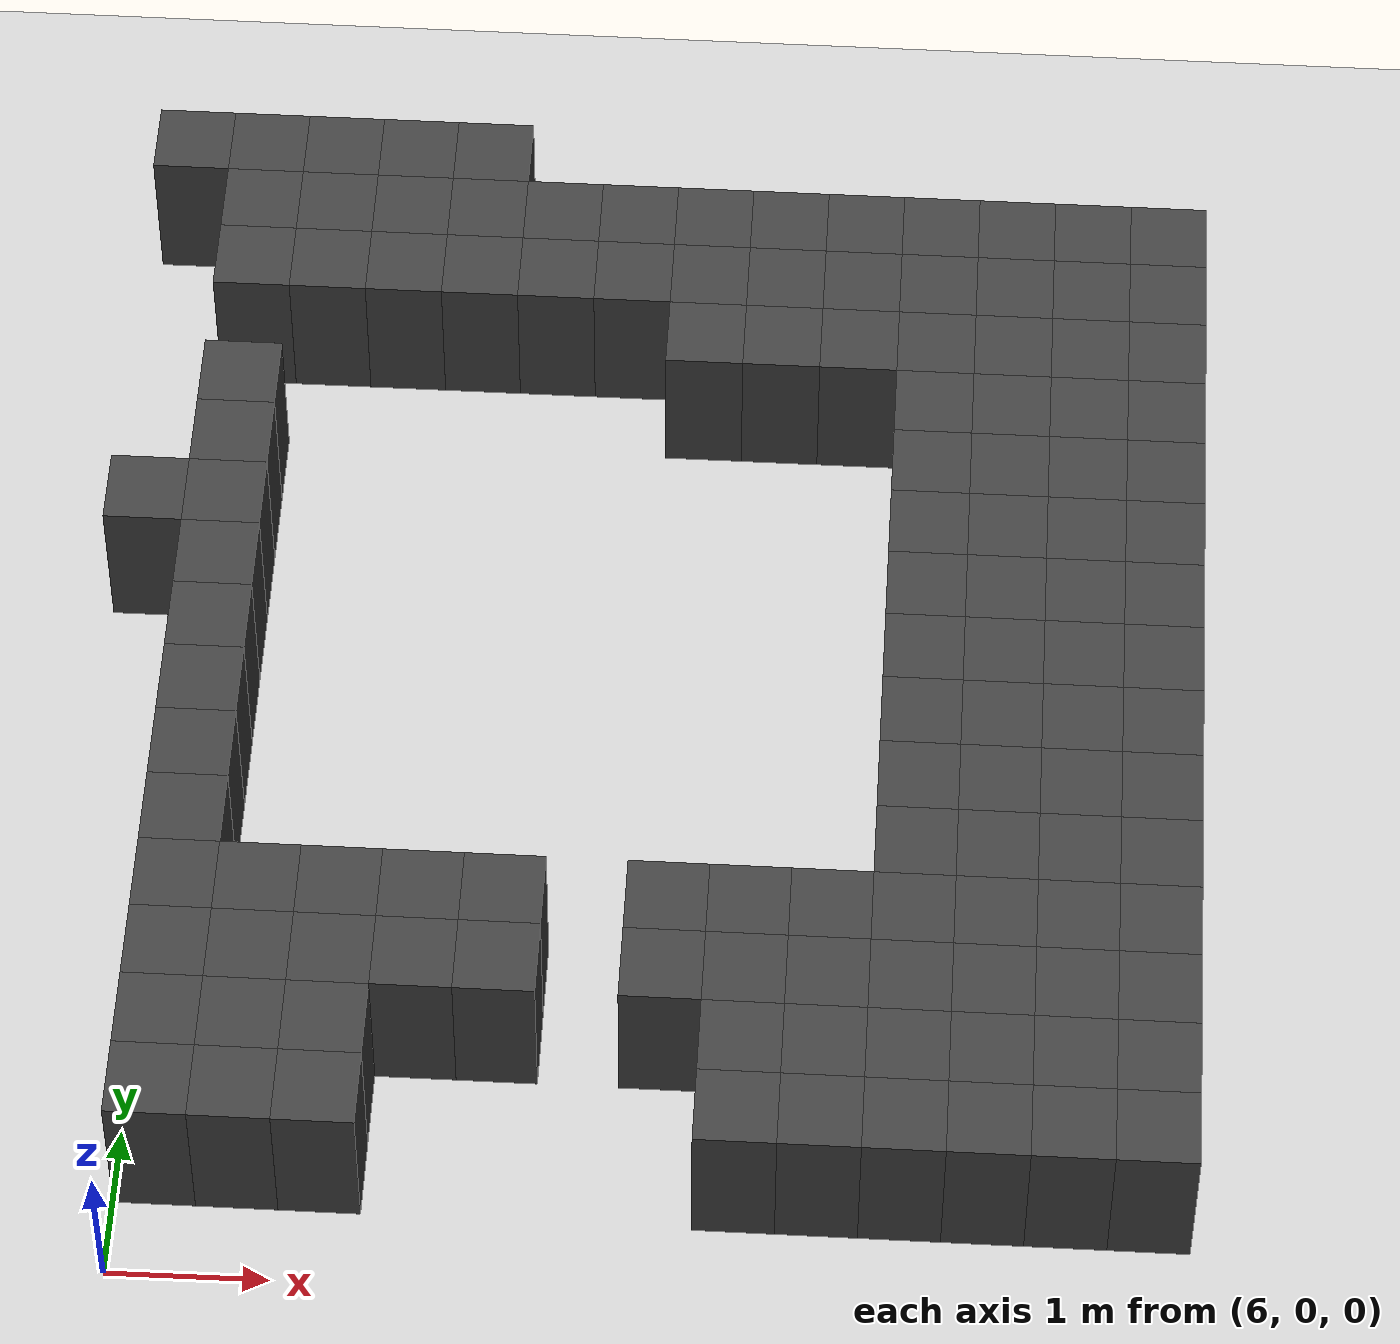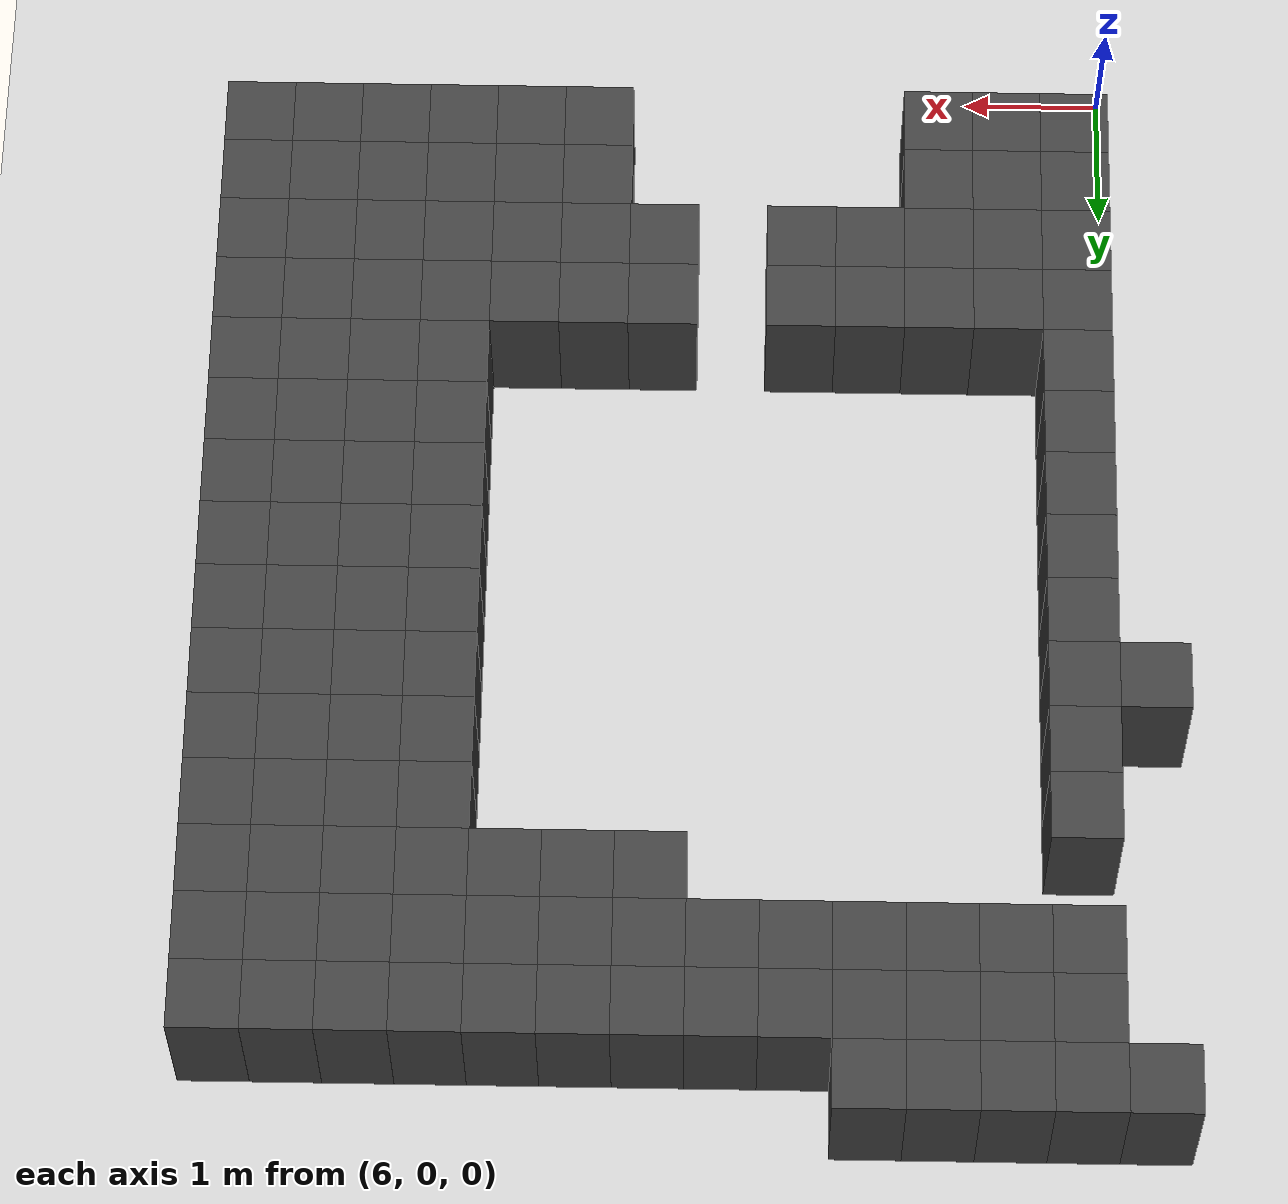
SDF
<sdf version="1.7">
 <world name="map_12885">
  <model name="ground_plane">
   <static>true</static>
   <link name="link">
    <collision name="collision">
     <geometry><plane><normal>0 0 1</normal><size>200 200</size></plane></geometry>
    </collision>
    <visual name="visual">
     <geometry><plane><normal>0 0 1</normal><size>200 200</size></plane></geometry>
     <material><ambient>0.8 0.8 0.8 1</ambient><diffuse>0.8 0.8 0.8 1</diffuse></material>
    </visual>
   </link>
  </model>
  <model name="maze_environment">
   <static>true</static>
   <link name="wall_414">
    <pose>5.750 8.250 0.500 0 0 0</pose>
    <collision name="col"><geometry><box><size>0.5 0.5 1.0</size></box></geometry></collision>
    <visual name="vis">
     <geometry><box><size>0.5 0.5 1.0</size></box></geometry>
     <material><ambient>0.15 0.15 0.15 1</ambient><diffuse>0.25 0.25 0.25 1</diffuse></material>
    </visual>
   </link>
   <link name="wall_415">
    <pose>6.250 8.250 0.500 0 0 0</pose>
    <collision name="col"><geometry><box><size>0.5 0.5 1.0</size></box></geometry></collision>
    <visual name="vis">
     <geometry><box><size>0.5 0.5 1.0</size></box></geometry>
     <material><ambient>0.15 0.15 0.15 1</ambient><diffuse>0.25 0.25 0.25 1</diffuse></material>
    </visual>
   </link>
   <link name="wall_416">
    <pose>6.750 8.250 0.500 0 0 0</pose>
    <collision name="col"><geometry><box><size>0.5 0.5 1.0</size></box></geometry></collision>
    <visual name="vis">
     <geometry><box><size>0.5 0.5 1.0</size></box></geometry>
     <material><ambient>0.15 0.15 0.15 1</ambient><diffuse>0.25 0.25 0.25 1</diffuse></material>
    </visual>
   </link>
   <link name="wall_417">
    <pose>7.250 8.250 0.500 0 0 0</pose>
    <collision name="col"><geometry><box><size>0.5 0.5 1.0</size></box></geometry></collision>
    <visual name="vis">
     <geometry><box><size>0.5 0.5 1.0</size></box></geometry>
     <material><ambient>0.15 0.15 0.15 1</ambient><diffuse>0.25 0.25 0.25 1</diffuse></material>
    </visual>
   </link>
   <link name="wall_418">
    <pose>7.750 8.250 0.500 0 0 0</pose>
    <collision name="col"><geometry><box><size>0.5 0.5 1.0</size></box></geometry></collision>
    <visual name="vis">
     <geometry><box><size>0.5 0.5 1.0</size></box></geometry>
     <material><ambient>0.15 0.15 0.15 1</ambient><diffuse>0.25 0.25 0.25 1</diffuse></material>
    </visual>
   </link>
   <link name="wall_455">
    <pose>6.250 7.750 0.500 0 0 0</pose>
    <collision name="col"><geometry><box><size>0.5 0.5 1.0</size></box></geometry></collision>
    <visual name="vis">
     <geometry><box><size>0.5 0.5 1.0</size></box></geometry>
     <material><ambient>0.15 0.15 0.15 1</ambient><diffuse>0.25 0.25 0.25 1</diffuse></material>
    </visual>
   </link>
   <link name="wall_456">
    <pose>6.750 7.750 0.500 0 0 0</pose>
    <collision name="col"><geometry><box><size>0.5 0.5 1.0</size></box></geometry></collision>
    <visual name="vis">
     <geometry><box><size>0.5 0.5 1.0</size></box></geometry>
     <material><ambient>0.15 0.15 0.15 1</ambient><diffuse>0.25 0.25 0.25 1</diffuse></material>
    </visual>
   </link>
   <link name="wall_457">
    <pose>7.250 7.750 0.500 0 0 0</pose>
    <collision name="col"><geometry><box><size>0.5 0.5 1.0</size></box></geometry></collision>
    <visual name="vis">
     <geometry><box><size>0.5 0.5 1.0</size></box></geometry>
     <material><ambient>0.15 0.15 0.15 1</ambient><diffuse>0.25 0.25 0.25 1</diffuse></material>
    </visual>
   </link>
   <link name="wall_458">
    <pose>7.750 7.750 0.500 0 0 0</pose>
    <collision name="col"><geometry><box><size>0.5 0.5 1.0</size></box></geometry></collision>
    <visual name="vis">
     <geometry><box><size>0.5 0.5 1.0</size></box></geometry>
     <material><ambient>0.15 0.15 0.15 1</ambient><diffuse>0.25 0.25 0.25 1</diffuse></material>
    </visual>
   </link>
   <link name="wall_459">
    <pose>8.250 7.750 0.500 0 0 0</pose>
    <collision name="col"><geometry><box><size>0.5 0.5 1.0</size></box></geometry></collision>
    <visual name="vis">
     <geometry><box><size>0.5 0.5 1.0</size></box></geometry>
     <material><ambient>0.15 0.15 0.15 1</ambient><diffuse>0.25 0.25 0.25 1</diffuse></material>
    </visual>
   </link>
   <link name="wall_460">
    <pose>8.750 7.750 0.500 0 0 0</pose>
    <collision name="col"><geometry><box><size>0.5 0.5 1.0</size></box></geometry></collision>
    <visual name="vis">
     <geometry><box><size>0.5 0.5 1.0</size></box></geometry>
     <material><ambient>0.15 0.15 0.15 1</ambient><diffuse>0.25 0.25 0.25 1</diffuse></material>
    </visual>
   </link>
   <link name="wall_461">
    <pose>9.250 7.750 0.500 0 0 0</pose>
    <collision name="col"><geometry><box><size>0.5 0.5 1.0</size></box></geometry></collision>
    <visual name="vis">
     <geometry><box><size>0.5 0.5 1.0</size></box></geometry>
     <material><ambient>0.15 0.15 0.15 1</ambient><diffuse>0.25 0.25 0.25 1</diffuse></material>
    </visual>
   </link>
   <link name="wall_462">
    <pose>9.750 7.750 0.500 0 0 0</pose>
    <collision name="col"><geometry><box><size>0.5 0.5 1.0</size></box></geometry></collision>
    <visual name="vis">
     <geometry><box><size>0.5 0.5 1.0</size></box></geometry>
     <material><ambient>0.15 0.15 0.15 1</ambient><diffuse>0.25 0.25 0.25 1</diffuse></material>
    </visual>
   </link>
   <link name="wall_463">
    <pose>10.250 7.750 0.500 0 0 0</pose>
    <collision name="col"><geometry><box><size>0.5 0.5 1.0</size></box></geometry></collision>
    <visual name="vis">
     <geometry><box><size>0.5 0.5 1.0</size></box></geometry>
     <material><ambient>0.15 0.15 0.15 1</ambient><diffuse>0.25 0.25 0.25 1</diffuse></material>
    </visual>
   </link>
   <link name="wall_464">
    <pose>10.750 7.750 0.500 0 0 0</pose>
    <collision name="col"><geometry><box><size>0.5 0.5 1.0</size></box></geometry></collision>
    <visual name="vis">
     <geometry><box><size>0.5 0.5 1.0</size></box></geometry>
     <material><ambient>0.15 0.15 0.15 1</ambient><diffuse>0.25 0.25 0.25 1</diffuse></material>
    </visual>
   </link>
   <link name="wall_465">
    <pose>11.250 7.750 0.500 0 0 0</pose>
    <collision name="col"><geometry><box><size>0.5 0.5 1.0</size></box></geometry></collision>
    <visual name="vis">
     <geometry><box><size>0.5 0.5 1.0</size></box></geometry>
     <material><ambient>0.15 0.15 0.15 1</ambient><diffuse>0.25 0.25 0.25 1</diffuse></material>
    </visual>
   </link>
   <link name="wall_466">
    <pose>11.750 7.750 0.500 0 0 0</pose>
    <collision name="col"><geometry><box><size>0.5 0.5 1.0</size></box></geometry></collision>
    <visual name="vis">
     <geometry><box><size>0.5 0.5 1.0</size></box></geometry>
     <material><ambient>0.15 0.15 0.15 1</ambient><diffuse>0.25 0.25 0.25 1</diffuse></material>
    </visual>
   </link>
   <link name="wall_467">
    <pose>12.250 7.750 0.500 0 0 0</pose>
    <collision name="col"><geometry><box><size>0.5 0.5 1.0</size></box></geometry></collision>
    <visual name="vis">
     <geometry><box><size>0.5 0.5 1.0</size></box></geometry>
     <material><ambient>0.15 0.15 0.15 1</ambient><diffuse>0.25 0.25 0.25 1</diffuse></material>
    </visual>
   </link>
   <link name="wall_491">
    <pose>6.250 7.250 0.500 0 0 0</pose>
    <collision name="col"><geometry><box><size>0.5 0.5 1.0</size></box></geometry></collision>
    <visual name="vis">
     <geometry><box><size>0.5 0.5 1.0</size></box></geometry>
     <material><ambient>0.15 0.15 0.15 1</ambient><diffuse>0.25 0.25 0.25 1</diffuse></material>
    </visual>
   </link>
   <link name="wall_492">
    <pose>6.750 7.250 0.500 0 0 0</pose>
    <collision name="col"><geometry><box><size>0.5 0.5 1.0</size></box></geometry></collision>
    <visual name="vis">
     <geometry><box><size>0.5 0.5 1.0</size></box></geometry>
     <material><ambient>0.15 0.15 0.15 1</ambient><diffuse>0.25 0.25 0.25 1</diffuse></material>
    </visual>
   </link>
   <link name="wall_493">
    <pose>7.250 7.250 0.500 0 0 0</pose>
    <collision name="col"><geometry><box><size>0.5 0.5 1.0</size></box></geometry></collision>
    <visual name="vis">
     <geometry><box><size>0.5 0.5 1.0</size></box></geometry>
     <material><ambient>0.15 0.15 0.15 1</ambient><diffuse>0.25 0.25 0.25 1</diffuse></material>
    </visual>
   </link>
   <link name="wall_494">
    <pose>7.750 7.250 0.500 0 0 0</pose>
    <collision name="col"><geometry><box><size>0.5 0.5 1.0</size></box></geometry></collision>
    <visual name="vis">
     <geometry><box><size>0.5 0.5 1.0</size></box></geometry>
     <material><ambient>0.15 0.15 0.15 1</ambient><diffuse>0.25 0.25 0.25 1</diffuse></material>
    </visual>
   </link>
   <link name="wall_495">
    <pose>8.250 7.250 0.500 0 0 0</pose>
    <collision name="col"><geometry><box><size>0.5 0.5 1.0</size></box></geometry></collision>
    <visual name="vis">
     <geometry><box><size>0.5 0.5 1.0</size></box></geometry>
     <material><ambient>0.15 0.15 0.15 1</ambient><diffuse>0.25 0.25 0.25 1</diffuse></material>
    </visual>
   </link>
   <link name="wall_496">
    <pose>8.750 7.250 0.500 0 0 0</pose>
    <collision name="col"><geometry><box><size>0.5 0.5 1.0</size></box></geometry></collision>
    <visual name="vis">
     <geometry><box><size>0.5 0.5 1.0</size></box></geometry>
     <material><ambient>0.15 0.15 0.15 1</ambient><diffuse>0.25 0.25 0.25 1</diffuse></material>
    </visual>
   </link>
   <link name="wall_497">
    <pose>9.250 7.250 0.500 0 0 0</pose>
    <collision name="col"><geometry><box><size>0.5 0.5 1.0</size></box></geometry></collision>
    <visual name="vis">
     <geometry><box><size>0.5 0.5 1.0</size></box></geometry>
     <material><ambient>0.15 0.15 0.15 1</ambient><diffuse>0.25 0.25 0.25 1</diffuse></material>
    </visual>
   </link>
   <link name="wall_498">
    <pose>9.750 7.250 0.500 0 0 0</pose>
    <collision name="col"><geometry><box><size>0.5 0.5 1.0</size></box></geometry></collision>
    <visual name="vis">
     <geometry><box><size>0.5 0.5 1.0</size></box></geometry>
     <material><ambient>0.15 0.15 0.15 1</ambient><diffuse>0.25 0.25 0.25 1</diffuse></material>
    </visual>
   </link>
   <link name="wall_499">
    <pose>10.250 7.250 0.500 0 0 0</pose>
    <collision name="col"><geometry><box><size>0.5 0.5 1.0</size></box></geometry></collision>
    <visual name="vis">
     <geometry><box><size>0.5 0.5 1.0</size></box></geometry>
     <material><ambient>0.15 0.15 0.15 1</ambient><diffuse>0.25 0.25 0.25 1</diffuse></material>
    </visual>
   </link>
   <link name="wall_500">
    <pose>10.750 7.250 0.500 0 0 0</pose>
    <collision name="col"><geometry><box><size>0.5 0.5 1.0</size></box></geometry></collision>
    <visual name="vis">
     <geometry><box><size>0.5 0.5 1.0</size></box></geometry>
     <material><ambient>0.15 0.15 0.15 1</ambient><diffuse>0.25 0.25 0.25 1</diffuse></material>
    </visual>
   </link>
   <link name="wall_501">
    <pose>11.250 7.250 0.500 0 0 0</pose>
    <collision name="col"><geometry><box><size>0.5 0.5 1.0</size></box></geometry></collision>
    <visual name="vis">
     <geometry><box><size>0.5 0.5 1.0</size></box></geometry>
     <material><ambient>0.15 0.15 0.15 1</ambient><diffuse>0.25 0.25 0.25 1</diffuse></material>
    </visual>
   </link>
   <link name="wall_502">
    <pose>11.750 7.250 0.500 0 0 0</pose>
    <collision name="col"><geometry><box><size>0.5 0.5 1.0</size></box></geometry></collision>
    <visual name="vis">
     <geometry><box><size>0.5 0.5 1.0</size></box></geometry>
     <material><ambient>0.15 0.15 0.15 1</ambient><diffuse>0.25 0.25 0.25 1</diffuse></material>
    </visual>
   </link>
   <link name="wall_503">
    <pose>12.250 7.250 0.500 0 0 0</pose>
    <collision name="col"><geometry><box><size>0.5 0.5 1.0</size></box></geometry></collision>
    <visual name="vis">
     <geometry><box><size>0.5 0.5 1.0</size></box></geometry>
     <material><ambient>0.15 0.15 0.15 1</ambient><diffuse>0.25 0.25 0.25 1</diffuse></material>
    </visual>
   </link>
   <link name="wall_531">
    <pose>9.250 6.750 0.500 0 0 0</pose>
    <collision name="col"><geometry><box><size>0.5 0.5 1.0</size></box></geometry></collision>
    <visual name="vis">
     <geometry><box><size>0.5 0.5 1.0</size></box></geometry>
     <material><ambient>0.15 0.15 0.15 1</ambient><diffuse>0.25 0.25 0.25 1</diffuse></material>
    </visual>
   </link>
   <link name="wall_532">
    <pose>9.750 6.750 0.500 0 0 0</pose>
    <collision name="col"><geometry><box><size>0.5 0.5 1.0</size></box></geometry></collision>
    <visual name="vis">
     <geometry><box><size>0.5 0.5 1.0</size></box></geometry>
     <material><ambient>0.15 0.15 0.15 1</ambient><diffuse>0.25 0.25 0.25 1</diffuse></material>
    </visual>
   </link>
   <link name="wall_533">
    <pose>10.250 6.750 0.500 0 0 0</pose>
    <collision name="col"><geometry><box><size>0.5 0.5 1.0</size></box></geometry></collision>
    <visual name="vis">
     <geometry><box><size>0.5 0.5 1.0</size></box></geometry>
     <material><ambient>0.15 0.15 0.15 1</ambient><diffuse>0.25 0.25 0.25 1</diffuse></material>
    </visual>
   </link>
   <link name="wall_534">
    <pose>10.750 6.750 0.500 0 0 0</pose>
    <collision name="col"><geometry><box><size>0.5 0.5 1.0</size></box></geometry></collision>
    <visual name="vis">
     <geometry><box><size>0.5 0.5 1.0</size></box></geometry>
     <material><ambient>0.15 0.15 0.15 1</ambient><diffuse>0.25 0.25 0.25 1</diffuse></material>
    </visual>
   </link>
   <link name="wall_535">
    <pose>11.250 6.750 0.500 0 0 0</pose>
    <collision name="col"><geometry><box><size>0.5 0.5 1.0</size></box></geometry></collision>
    <visual name="vis">
     <geometry><box><size>0.5 0.5 1.0</size></box></geometry>
     <material><ambient>0.15 0.15 0.15 1</ambient><diffuse>0.25 0.25 0.25 1</diffuse></material>
    </visual>
   </link>
   <link name="wall_536">
    <pose>11.750 6.750 0.500 0 0 0</pose>
    <collision name="col"><geometry><box><size>0.5 0.5 1.0</size></box></geometry></collision>
    <visual name="vis">
     <geometry><box><size>0.5 0.5 1.0</size></box></geometry>
     <material><ambient>0.15 0.15 0.15 1</ambient><diffuse>0.25 0.25 0.25 1</diffuse></material>
    </visual>
   </link>
   <link name="wall_537">
    <pose>12.250 6.750 0.500 0 0 0</pose>
    <collision name="col"><geometry><box><size>0.5 0.5 1.0</size></box></geometry></collision>
    <visual name="vis">
     <geometry><box><size>0.5 0.5 1.0</size></box></geometry>
     <material><ambient>0.15 0.15 0.15 1</ambient><diffuse>0.25 0.25 0.25 1</diffuse></material>
    </visual>
   </link>
   <link name="wall_565">
    <pose>6.250 6.250 0.500 0 0 0</pose>
    <collision name="col"><geometry><box><size>0.5 0.5 1.0</size></box></geometry></collision>
    <visual name="vis">
     <geometry><box><size>0.5 0.5 1.0</size></box></geometry>
     <material><ambient>0.15 0.15 0.15 1</ambient><diffuse>0.25 0.25 0.25 1</diffuse></material>
    </visual>
   </link>
   <link name="wall_566">
    <pose>10.750 6.250 0.500 0 0 0</pose>
    <collision name="col"><geometry><box><size>0.5 0.5 1.0</size></box></geometry></collision>
    <visual name="vis">
     <geometry><box><size>0.5 0.5 1.0</size></box></geometry>
     <material><ambient>0.15 0.15 0.15 1</ambient><diffuse>0.25 0.25 0.25 1</diffuse></material>
    </visual>
   </link>
   <link name="wall_567">
    <pose>11.250 6.250 0.500 0 0 0</pose>
    <collision name="col"><geometry><box><size>0.5 0.5 1.0</size></box></geometry></collision>
    <visual name="vis">
     <geometry><box><size>0.5 0.5 1.0</size></box></geometry>
     <material><ambient>0.15 0.15 0.15 1</ambient><diffuse>0.25 0.25 0.25 1</diffuse></material>
    </visual>
   </link>
   <link name="wall_568">
    <pose>11.750 6.250 0.500 0 0 0</pose>
    <collision name="col"><geometry><box><size>0.5 0.5 1.0</size></box></geometry></collision>
    <visual name="vis">
     <geometry><box><size>0.5 0.5 1.0</size></box></geometry>
     <material><ambient>0.15 0.15 0.15 1</ambient><diffuse>0.25 0.25 0.25 1</diffuse></material>
    </visual>
   </link>
   <link name="wall_569">
    <pose>12.250 6.250 0.500 0 0 0</pose>
    <collision name="col"><geometry><box><size>0.5 0.5 1.0</size></box></geometry></collision>
    <visual name="vis">
     <geometry><box><size>0.5 0.5 1.0</size></box></geometry>
     <material><ambient>0.15 0.15 0.15 1</ambient><diffuse>0.25 0.25 0.25 1</diffuse></material>
    </visual>
   </link>
   <link name="wall_597">
    <pose>6.250 5.750 0.500 0 0 0</pose>
    <collision name="col"><geometry><box><size>0.5 0.5 1.0</size></box></geometry></collision>
    <visual name="vis">
     <geometry><box><size>0.5 0.5 1.0</size></box></geometry>
     <material><ambient>0.15 0.15 0.15 1</ambient><diffuse>0.25 0.25 0.25 1</diffuse></material>
    </visual>
   </link>
   <link name="wall_598">
    <pose>10.750 5.750 0.500 0 0 0</pose>
    <collision name="col"><geometry><box><size>0.5 0.5 1.0</size></box></geometry></collision>
    <visual name="vis">
     <geometry><box><size>0.5 0.5 1.0</size></box></geometry>
     <material><ambient>0.15 0.15 0.15 1</ambient><diffuse>0.25 0.25 0.25 1</diffuse></material>
    </visual>
   </link>
   <link name="wall_599">
    <pose>11.250 5.750 0.500 0 0 0</pose>
    <collision name="col"><geometry><box><size>0.5 0.5 1.0</size></box></geometry></collision>
    <visual name="vis">
     <geometry><box><size>0.5 0.5 1.0</size></box></geometry>
     <material><ambient>0.15 0.15 0.15 1</ambient><diffuse>0.25 0.25 0.25 1</diffuse></material>
    </visual>
   </link>
   <link name="wall_600">
    <pose>11.750 5.750 0.500 0 0 0</pose>
    <collision name="col"><geometry><box><size>0.5 0.5 1.0</size></box></geometry></collision>
    <visual name="vis">
     <geometry><box><size>0.5 0.5 1.0</size></box></geometry>
     <material><ambient>0.15 0.15 0.15 1</ambient><diffuse>0.25 0.25 0.25 1</diffuse></material>
    </visual>
   </link>
   <link name="wall_601">
    <pose>12.250 5.750 0.500 0 0 0</pose>
    <collision name="col"><geometry><box><size>0.5 0.5 1.0</size></box></geometry></collision>
    <visual name="vis">
     <geometry><box><size>0.5 0.5 1.0</size></box></geometry>
     <material><ambient>0.15 0.15 0.15 1</ambient><diffuse>0.25 0.25 0.25 1</diffuse></material>
    </visual>
   </link>
   <link name="wall_637">
    <pose>5.750 5.250 0.500 0 0 0</pose>
    <collision name="col"><geometry><box><size>0.5 0.5 1.0</size></box></geometry></collision>
    <visual name="vis">
     <geometry><box><size>0.5 0.5 1.0</size></box></geometry>
     <material><ambient>0.15 0.15 0.15 1</ambient><diffuse>0.25 0.25 0.25 1</diffuse></material>
    </visual>
   </link>
   <link name="wall_638">
    <pose>6.250 5.250 0.500 0 0 0</pose>
    <collision name="col"><geometry><box><size>0.5 0.5 1.0</size></box></geometry></collision>
    <visual name="vis">
     <geometry><box><size>0.5 0.5 1.0</size></box></geometry>
     <material><ambient>0.15 0.15 0.15 1</ambient><diffuse>0.25 0.25 0.25 1</diffuse></material>
    </visual>
   </link>
   <link name="wall_639">
    <pose>10.750 5.250 0.500 0 0 0</pose>
    <collision name="col"><geometry><box><size>0.5 0.5 1.0</size></box></geometry></collision>
    <visual name="vis">
     <geometry><box><size>0.5 0.5 1.0</size></box></geometry>
     <material><ambient>0.15 0.15 0.15 1</ambient><diffuse>0.25 0.25 0.25 1</diffuse></material>
    </visual>
   </link>
   <link name="wall_640">
    <pose>11.250 5.250 0.500 0 0 0</pose>
    <collision name="col"><geometry><box><size>0.5 0.5 1.0</size></box></geometry></collision>
    <visual name="vis">
     <geometry><box><size>0.5 0.5 1.0</size></box></geometry>
     <material><ambient>0.15 0.15 0.15 1</ambient><diffuse>0.25 0.25 0.25 1</diffuse></material>
    </visual>
   </link>
   <link name="wall_641">
    <pose>11.750 5.250 0.500 0 0 0</pose>
    <collision name="col"><geometry><box><size>0.5 0.5 1.0</size></box></geometry></collision>
    <visual name="vis">
     <geometry><box><size>0.5 0.5 1.0</size></box></geometry>
     <material><ambient>0.15 0.15 0.15 1</ambient><diffuse>0.25 0.25 0.25 1</diffuse></material>
    </visual>
   </link>
   <link name="wall_642">
    <pose>12.250 5.250 0.500 0 0 0</pose>
    <collision name="col"><geometry><box><size>0.5 0.5 1.0</size></box></geometry></collision>
    <visual name="vis">
     <geometry><box><size>0.5 0.5 1.0</size></box></geometry>
     <material><ambient>0.15 0.15 0.15 1</ambient><diffuse>0.25 0.25 0.25 1</diffuse></material>
    </visual>
   </link>
   <link name="wall_679">
    <pose>6.250 4.750 0.500 0 0 0</pose>
    <collision name="col"><geometry><box><size>0.5 0.5 1.0</size></box></geometry></collision>
    <visual name="vis">
     <geometry><box><size>0.5 0.5 1.0</size></box></geometry>
     <material><ambient>0.15 0.15 0.15 1</ambient><diffuse>0.25 0.25 0.25 1</diffuse></material>
    </visual>
   </link>
   <link name="wall_680">
    <pose>10.750 4.750 0.500 0 0 0</pose>
    <collision name="col"><geometry><box><size>0.5 0.5 1.0</size></box></geometry></collision>
    <visual name="vis">
     <geometry><box><size>0.5 0.5 1.0</size></box></geometry>
     <material><ambient>0.15 0.15 0.15 1</ambient><diffuse>0.25 0.25 0.25 1</diffuse></material>
    </visual>
   </link>
   <link name="wall_681">
    <pose>11.250 4.750 0.500 0 0 0</pose>
    <collision name="col"><geometry><box><size>0.5 0.5 1.0</size></box></geometry></collision>
    <visual name="vis">
     <geometry><box><size>0.5 0.5 1.0</size></box></geometry>
     <material><ambient>0.15 0.15 0.15 1</ambient><diffuse>0.25 0.25 0.25 1</diffuse></material>
    </visual>
   </link>
   <link name="wall_682">
    <pose>11.750 4.750 0.500 0 0 0</pose>
    <collision name="col"><geometry><box><size>0.5 0.5 1.0</size></box></geometry></collision>
    <visual name="vis">
     <geometry><box><size>0.5 0.5 1.0</size></box></geometry>
     <material><ambient>0.15 0.15 0.15 1</ambient><diffuse>0.25 0.25 0.25 1</diffuse></material>
    </visual>
   </link>
   <link name="wall_683">
    <pose>12.250 4.750 0.500 0 0 0</pose>
    <collision name="col"><geometry><box><size>0.5 0.5 1.0</size></box></geometry></collision>
    <visual name="vis">
     <geometry><box><size>0.5 0.5 1.0</size></box></geometry>
     <material><ambient>0.15 0.15 0.15 1</ambient><diffuse>0.25 0.25 0.25 1</diffuse></material>
    </visual>
   </link>
   <link name="wall_720">
    <pose>6.250 4.250 0.500 0 0 0</pose>
    <collision name="col"><geometry><box><size>0.5 0.5 1.0</size></box></geometry></collision>
    <visual name="vis">
     <geometry><box><size>0.5 0.5 1.0</size></box></geometry>
     <material><ambient>0.15 0.15 0.15 1</ambient><diffuse>0.25 0.25 0.25 1</diffuse></material>
    </visual>
   </link>
   <link name="wall_721">
    <pose>10.750 4.250 0.500 0 0 0</pose>
    <collision name="col"><geometry><box><size>0.5 0.5 1.0</size></box></geometry></collision>
    <visual name="vis">
     <geometry><box><size>0.5 0.5 1.0</size></box></geometry>
     <material><ambient>0.15 0.15 0.15 1</ambient><diffuse>0.25 0.25 0.25 1</diffuse></material>
    </visual>
   </link>
   <link name="wall_722">
    <pose>11.250 4.250 0.500 0 0 0</pose>
    <collision name="col"><geometry><box><size>0.5 0.5 1.0</size></box></geometry></collision>
    <visual name="vis">
     <geometry><box><size>0.5 0.5 1.0</size></box></geometry>
     <material><ambient>0.15 0.15 0.15 1</ambient><diffuse>0.25 0.25 0.25 1</diffuse></material>
    </visual>
   </link>
   <link name="wall_723">
    <pose>11.750 4.250 0.500 0 0 0</pose>
    <collision name="col"><geometry><box><size>0.5 0.5 1.0</size></box></geometry></collision>
    <visual name="vis">
     <geometry><box><size>0.5 0.5 1.0</size></box></geometry>
     <material><ambient>0.15 0.15 0.15 1</ambient><diffuse>0.25 0.25 0.25 1</diffuse></material>
    </visual>
   </link>
   <link name="wall_724">
    <pose>12.250 4.250 0.500 0 0 0</pose>
    <collision name="col"><geometry><box><size>0.5 0.5 1.0</size></box></geometry></collision>
    <visual name="vis">
     <geometry><box><size>0.5 0.5 1.0</size></box></geometry>
     <material><ambient>0.15 0.15 0.15 1</ambient><diffuse>0.25 0.25 0.25 1</diffuse></material>
    </visual>
   </link>
   <link name="wall_761">
    <pose>6.250 3.750 0.500 0 0 0</pose>
    <collision name="col"><geometry><box><size>0.5 0.5 1.0</size></box></geometry></collision>
    <visual name="vis">
     <geometry><box><size>0.5 0.5 1.0</size></box></geometry>
     <material><ambient>0.15 0.15 0.15 1</ambient><diffuse>0.25 0.25 0.25 1</diffuse></material>
    </visual>
   </link>
   <link name="wall_762">
    <pose>10.750 3.750 0.500 0 0 0</pose>
    <collision name="col"><geometry><box><size>0.5 0.5 1.0</size></box></geometry></collision>
    <visual name="vis">
     <geometry><box><size>0.5 0.5 1.0</size></box></geometry>
     <material><ambient>0.15 0.15 0.15 1</ambient><diffuse>0.25 0.25 0.25 1</diffuse></material>
    </visual>
   </link>
   <link name="wall_763">
    <pose>11.250 3.750 0.500 0 0 0</pose>
    <collision name="col"><geometry><box><size>0.5 0.5 1.0</size></box></geometry></collision>
    <visual name="vis">
     <geometry><box><size>0.5 0.5 1.0</size></box></geometry>
     <material><ambient>0.15 0.15 0.15 1</ambient><diffuse>0.25 0.25 0.25 1</diffuse></material>
    </visual>
   </link>
   <link name="wall_764">
    <pose>11.750 3.750 0.500 0 0 0</pose>
    <collision name="col"><geometry><box><size>0.5 0.5 1.0</size></box></geometry></collision>
    <visual name="vis">
     <geometry><box><size>0.5 0.5 1.0</size></box></geometry>
     <material><ambient>0.15 0.15 0.15 1</ambient><diffuse>0.25 0.25 0.25 1</diffuse></material>
    </visual>
   </link>
   <link name="wall_765">
    <pose>12.250 3.750 0.500 0 0 0</pose>
    <collision name="col"><geometry><box><size>0.5 0.5 1.0</size></box></geometry></collision>
    <visual name="vis">
     <geometry><box><size>0.5 0.5 1.0</size></box></geometry>
     <material><ambient>0.15 0.15 0.15 1</ambient><diffuse>0.25 0.25 0.25 1</diffuse></material>
    </visual>
   </link>
   <link name="wall_802">
    <pose>6.250 3.250 0.500 0 0 0</pose>
    <collision name="col"><geometry><box><size>0.5 0.5 1.0</size></box></geometry></collision>
    <visual name="vis">
     <geometry><box><size>0.5 0.5 1.0</size></box></geometry>
     <material><ambient>0.15 0.15 0.15 1</ambient><diffuse>0.25 0.25 0.25 1</diffuse></material>
    </visual>
   </link>
   <link name="wall_803">
    <pose>10.750 3.250 0.500 0 0 0</pose>
    <collision name="col"><geometry><box><size>0.5 0.5 1.0</size></box></geometry></collision>
    <visual name="vis">
     <geometry><box><size>0.5 0.5 1.0</size></box></geometry>
     <material><ambient>0.15 0.15 0.15 1</ambient><diffuse>0.25 0.25 0.25 1</diffuse></material>
    </visual>
   </link>
   <link name="wall_804">
    <pose>11.250 3.250 0.500 0 0 0</pose>
    <collision name="col"><geometry><box><size>0.5 0.5 1.0</size></box></geometry></collision>
    <visual name="vis">
     <geometry><box><size>0.5 0.5 1.0</size></box></geometry>
     <material><ambient>0.15 0.15 0.15 1</ambient><diffuse>0.25 0.25 0.25 1</diffuse></material>
    </visual>
   </link>
   <link name="wall_805">
    <pose>11.750 3.250 0.500 0 0 0</pose>
    <collision name="col"><geometry><box><size>0.5 0.5 1.0</size></box></geometry></collision>
    <visual name="vis">
     <geometry><box><size>0.5 0.5 1.0</size></box></geometry>
     <material><ambient>0.15 0.15 0.15 1</ambient><diffuse>0.25 0.25 0.25 1</diffuse></material>
    </visual>
   </link>
   <link name="wall_806">
    <pose>12.250 3.250 0.500 0 0 0</pose>
    <collision name="col"><geometry><box><size>0.5 0.5 1.0</size></box></geometry></collision>
    <visual name="vis">
     <geometry><box><size>0.5 0.5 1.0</size></box></geometry>
     <material><ambient>0.15 0.15 0.15 1</ambient><diffuse>0.25 0.25 0.25 1</diffuse></material>
    </visual>
   </link>
   <link name="wall_843">
    <pose>6.250 2.750 0.500 0 0 0</pose>
    <collision name="col"><geometry><box><size>0.5 0.5 1.0</size></box></geometry></collision>
    <visual name="vis">
     <geometry><box><size>0.5 0.5 1.0</size></box></geometry>
     <material><ambient>0.15 0.15 0.15 1</ambient><diffuse>0.25 0.25 0.25 1</diffuse></material>
    </visual>
   </link>
   <link name="wall_844">
    <pose>10.750 2.750 0.500 0 0 0</pose>
    <collision name="col"><geometry><box><size>0.5 0.5 1.0</size></box></geometry></collision>
    <visual name="vis">
     <geometry><box><size>0.5 0.5 1.0</size></box></geometry>
     <material><ambient>0.15 0.15 0.15 1</ambient><diffuse>0.25 0.25 0.25 1</diffuse></material>
    </visual>
   </link>
   <link name="wall_845">
    <pose>11.250 2.750 0.500 0 0 0</pose>
    <collision name="col"><geometry><box><size>0.5 0.5 1.0</size></box></geometry></collision>
    <visual name="vis">
     <geometry><box><size>0.5 0.5 1.0</size></box></geometry>
     <material><ambient>0.15 0.15 0.15 1</ambient><diffuse>0.25 0.25 0.25 1</diffuse></material>
    </visual>
   </link>
   <link name="wall_846">
    <pose>11.750 2.750 0.500 0 0 0</pose>
    <collision name="col"><geometry><box><size>0.5 0.5 1.0</size></box></geometry></collision>
    <visual name="vis">
     <geometry><box><size>0.5 0.5 1.0</size></box></geometry>
     <material><ambient>0.15 0.15 0.15 1</ambient><diffuse>0.25 0.25 0.25 1</diffuse></material>
    </visual>
   </link>
   <link name="wall_847">
    <pose>12.250 2.750 0.500 0 0 0</pose>
    <collision name="col"><geometry><box><size>0.5 0.5 1.0</size></box></geometry></collision>
    <visual name="vis">
     <geometry><box><size>0.5 0.5 1.0</size></box></geometry>
     <material><ambient>0.15 0.15 0.15 1</ambient><diffuse>0.25 0.25 0.25 1</diffuse></material>
    </visual>
   </link>
   <link name="wall_878">
    <pose>6.250 2.250 0.500 0 0 0</pose>
    <collision name="col"><geometry><box><size>0.5 0.5 1.0</size></box></geometry></collision>
    <visual name="vis">
     <geometry><box><size>0.5 0.5 1.0</size></box></geometry>
     <material><ambient>0.15 0.15 0.15 1</ambient><diffuse>0.25 0.25 0.25 1</diffuse></material>
    </visual>
   </link>
   <link name="wall_879">
    <pose>6.750 2.250 0.500 0 0 0</pose>
    <collision name="col"><geometry><box><size>0.5 0.5 1.0</size></box></geometry></collision>
    <visual name="vis">
     <geometry><box><size>0.5 0.5 1.0</size></box></geometry>
     <material><ambient>0.15 0.15 0.15 1</ambient><diffuse>0.25 0.25 0.25 1</diffuse></material>
    </visual>
   </link>
   <link name="wall_880">
    <pose>7.250 2.250 0.500 0 0 0</pose>
    <collision name="col"><geometry><box><size>0.5 0.5 1.0</size></box></geometry></collision>
    <visual name="vis">
     <geometry><box><size>0.5 0.5 1.0</size></box></geometry>
     <material><ambient>0.15 0.15 0.15 1</ambient><diffuse>0.25 0.25 0.25 1</diffuse></material>
    </visual>
   </link>
   <link name="wall_881">
    <pose>7.750 2.250 0.500 0 0 0</pose>
    <collision name="col"><geometry><box><size>0.5 0.5 1.0</size></box></geometry></collision>
    <visual name="vis">
     <geometry><box><size>0.5 0.5 1.0</size></box></geometry>
     <material><ambient>0.15 0.15 0.15 1</ambient><diffuse>0.25 0.25 0.25 1</diffuse></material>
    </visual>
   </link>
   <link name="wall_882">
    <pose>8.250 2.250 0.500 0 0 0</pose>
    <collision name="col"><geometry><box><size>0.5 0.5 1.0</size></box></geometry></collision>
    <visual name="vis">
     <geometry><box><size>0.5 0.5 1.0</size></box></geometry>
     <material><ambient>0.15 0.15 0.15 1</ambient><diffuse>0.25 0.25 0.25 1</diffuse></material>
    </visual>
   </link>
   <link name="wall_883">
    <pose>9.250 2.250 0.500 0 0 0</pose>
    <collision name="col"><geometry><box><size>0.5 0.5 1.0</size></box></geometry></collision>
    <visual name="vis">
     <geometry><box><size>0.5 0.5 1.0</size></box></geometry>
     <material><ambient>0.15 0.15 0.15 1</ambient><diffuse>0.25 0.25 0.25 1</diffuse></material>
    </visual>
   </link>
   <link name="wall_884">
    <pose>9.750 2.250 0.500 0 0 0</pose>
    <collision name="col"><geometry><box><size>0.5 0.5 1.0</size></box></geometry></collision>
    <visual name="vis">
     <geometry><box><size>0.5 0.5 1.0</size></box></geometry>
     <material><ambient>0.15 0.15 0.15 1</ambient><diffuse>0.25 0.25 0.25 1</diffuse></material>
    </visual>
   </link>
   <link name="wall_885">
    <pose>10.250 2.250 0.500 0 0 0</pose>
    <collision name="col"><geometry><box><size>0.5 0.5 1.0</size></box></geometry></collision>
    <visual name="vis">
     <geometry><box><size>0.5 0.5 1.0</size></box></geometry>
     <material><ambient>0.15 0.15 0.15 1</ambient><diffuse>0.25 0.25 0.25 1</diffuse></material>
    </visual>
   </link>
   <link name="wall_886">
    <pose>10.750 2.250 0.500 0 0 0</pose>
    <collision name="col"><geometry><box><size>0.5 0.5 1.0</size></box></geometry></collision>
    <visual name="vis">
     <geometry><box><size>0.5 0.5 1.0</size></box></geometry>
     <material><ambient>0.15 0.15 0.15 1</ambient><diffuse>0.25 0.25 0.25 1</diffuse></material>
    </visual>
   </link>
   <link name="wall_887">
    <pose>11.250 2.250 0.500 0 0 0</pose>
    <collision name="col"><geometry><box><size>0.5 0.5 1.0</size></box></geometry></collision>
    <visual name="vis">
     <geometry><box><size>0.5 0.5 1.0</size></box></geometry>
     <material><ambient>0.15 0.15 0.15 1</ambient><diffuse>0.25 0.25 0.25 1</diffuse></material>
    </visual>
   </link>
   <link name="wall_888">
    <pose>11.750 2.250 0.500 0 0 0</pose>
    <collision name="col"><geometry><box><size>0.5 0.5 1.0</size></box></geometry></collision>
    <visual name="vis">
     <geometry><box><size>0.5 0.5 1.0</size></box></geometry>
     <material><ambient>0.15 0.15 0.15 1</ambient><diffuse>0.25 0.25 0.25 1</diffuse></material>
    </visual>
   </link>
   <link name="wall_889">
    <pose>12.250 2.250 0.500 0 0 0</pose>
    <collision name="col"><geometry><box><size>0.5 0.5 1.0</size></box></geometry></collision>
    <visual name="vis">
     <geometry><box><size>0.5 0.5 1.0</size></box></geometry>
     <material><ambient>0.15 0.15 0.15 1</ambient><diffuse>0.25 0.25 0.25 1</diffuse></material>
    </visual>
   </link>
   <link name="wall_920">
    <pose>6.250 1.750 0.500 0 0 0</pose>
    <collision name="col"><geometry><box><size>0.5 0.5 1.0</size></box></geometry></collision>
    <visual name="vis">
     <geometry><box><size>0.5 0.5 1.0</size></box></geometry>
     <material><ambient>0.15 0.15 0.15 1</ambient><diffuse>0.25 0.25 0.25 1</diffuse></material>
    </visual>
   </link>
   <link name="wall_921">
    <pose>6.750 1.750 0.500 0 0 0</pose>
    <collision name="col"><geometry><box><size>0.5 0.5 1.0</size></box></geometry></collision>
    <visual name="vis">
     <geometry><box><size>0.5 0.5 1.0</size></box></geometry>
     <material><ambient>0.15 0.15 0.15 1</ambient><diffuse>0.25 0.25 0.25 1</diffuse></material>
    </visual>
   </link>
   <link name="wall_922">
    <pose>7.250 1.750 0.500 0 0 0</pose>
    <collision name="col"><geometry><box><size>0.5 0.5 1.0</size></box></geometry></collision>
    <visual name="vis">
     <geometry><box><size>0.5 0.5 1.0</size></box></geometry>
     <material><ambient>0.15 0.15 0.15 1</ambient><diffuse>0.25 0.25 0.25 1</diffuse></material>
    </visual>
   </link>
   <link name="wall_923">
    <pose>7.750 1.750 0.500 0 0 0</pose>
    <collision name="col"><geometry><box><size>0.5 0.5 1.0</size></box></geometry></collision>
    <visual name="vis">
     <geometry><box><size>0.5 0.5 1.0</size></box></geometry>
     <material><ambient>0.15 0.15 0.15 1</ambient><diffuse>0.25 0.25 0.25 1</diffuse></material>
    </visual>
   </link>
   <link name="wall_924">
    <pose>8.250 1.750 0.500 0 0 0</pose>
    <collision name="col"><geometry><box><size>0.5 0.5 1.0</size></box></geometry></collision>
    <visual name="vis">
     <geometry><box><size>0.5 0.5 1.0</size></box></geometry>
     <material><ambient>0.15 0.15 0.15 1</ambient><diffuse>0.25 0.25 0.25 1</diffuse></material>
    </visual>
   </link>
   <link name="wall_925">
    <pose>9.250 1.750 0.500 0 0 0</pose>
    <collision name="col"><geometry><box><size>0.5 0.5 1.0</size></box></geometry></collision>
    <visual name="vis">
     <geometry><box><size>0.5 0.5 1.0</size></box></geometry>
     <material><ambient>0.15 0.15 0.15 1</ambient><diffuse>0.25 0.25 0.25 1</diffuse></material>
    </visual>
   </link>
   <link name="wall_926">
    <pose>9.750 1.750 0.500 0 0 0</pose>
    <collision name="col"><geometry><box><size>0.5 0.5 1.0</size></box></geometry></collision>
    <visual name="vis">
     <geometry><box><size>0.5 0.5 1.0</size></box></geometry>
     <material><ambient>0.15 0.15 0.15 1</ambient><diffuse>0.25 0.25 0.25 1</diffuse></material>
    </visual>
   </link>
   <link name="wall_927">
    <pose>10.250 1.750 0.500 0 0 0</pose>
    <collision name="col"><geometry><box><size>0.5 0.5 1.0</size></box></geometry></collision>
    <visual name="vis">
     <geometry><box><size>0.5 0.5 1.0</size></box></geometry>
     <material><ambient>0.15 0.15 0.15 1</ambient><diffuse>0.25 0.25 0.25 1</diffuse></material>
    </visual>
   </link>
   <link name="wall_928">
    <pose>10.750 1.750 0.500 0 0 0</pose>
    <collision name="col"><geometry><box><size>0.5 0.5 1.0</size></box></geometry></collision>
    <visual name="vis">
     <geometry><box><size>0.5 0.5 1.0</size></box></geometry>
     <material><ambient>0.15 0.15 0.15 1</ambient><diffuse>0.25 0.25 0.25 1</diffuse></material>
    </visual>
   </link>
   <link name="wall_929">
    <pose>11.250 1.750 0.500 0 0 0</pose>
    <collision name="col"><geometry><box><size>0.5 0.5 1.0</size></box></geometry></collision>
    <visual name="vis">
     <geometry><box><size>0.5 0.5 1.0</size></box></geometry>
     <material><ambient>0.15 0.15 0.15 1</ambient><diffuse>0.25 0.25 0.25 1</diffuse></material>
    </visual>
   </link>
   <link name="wall_930">
    <pose>11.750 1.750 0.500 0 0 0</pose>
    <collision name="col"><geometry><box><size>0.5 0.5 1.0</size></box></geometry></collision>
    <visual name="vis">
     <geometry><box><size>0.5 0.5 1.0</size></box></geometry>
     <material><ambient>0.15 0.15 0.15 1</ambient><diffuse>0.25 0.25 0.25 1</diffuse></material>
    </visual>
   </link>
   <link name="wall_931">
    <pose>12.250 1.750 0.500 0 0 0</pose>
    <collision name="col"><geometry><box><size>0.5 0.5 1.0</size></box></geometry></collision>
    <visual name="vis">
     <geometry><box><size>0.5 0.5 1.0</size></box></geometry>
     <material><ambient>0.15 0.15 0.15 1</ambient><diffuse>0.25 0.25 0.25 1</diffuse></material>
    </visual>
   </link>
   <link name="wall_962">
    <pose>6.250 1.250 0.500 0 0 0</pose>
    <collision name="col"><geometry><box><size>0.5 0.5 1.0</size></box></geometry></collision>
    <visual name="vis">
     <geometry><box><size>0.5 0.5 1.0</size></box></geometry>
     <material><ambient>0.15 0.15 0.15 1</ambient><diffuse>0.25 0.25 0.25 1</diffuse></material>
    </visual>
   </link>
   <link name="wall_963">
    <pose>6.750 1.250 0.500 0 0 0</pose>
    <collision name="col"><geometry><box><size>0.5 0.5 1.0</size></box></geometry></collision>
    <visual name="vis">
     <geometry><box><size>0.5 0.5 1.0</size></box></geometry>
     <material><ambient>0.15 0.15 0.15 1</ambient><diffuse>0.25 0.25 0.25 1</diffuse></material>
    </visual>
   </link>
   <link name="wall_964">
    <pose>7.250 1.250 0.500 0 0 0</pose>
    <collision name="col"><geometry><box><size>0.5 0.5 1.0</size></box></geometry></collision>
    <visual name="vis">
     <geometry><box><size>0.5 0.5 1.0</size></box></geometry>
     <material><ambient>0.15 0.15 0.15 1</ambient><diffuse>0.25 0.25 0.25 1</diffuse></material>
    </visual>
   </link>
   <link name="wall_965">
    <pose>9.750 1.250 0.500 0 0 0</pose>
    <collision name="col"><geometry><box><size>0.5 0.5 1.0</size></box></geometry></collision>
    <visual name="vis">
     <geometry><box><size>0.5 0.5 1.0</size></box></geometry>
     <material><ambient>0.15 0.15 0.15 1</ambient><diffuse>0.25 0.25 0.25 1</diffuse></material>
    </visual>
   </link>
   <link name="wall_966">
    <pose>10.250 1.250 0.500 0 0 0</pose>
    <collision name="col"><geometry><box><size>0.5 0.5 1.0</size></box></geometry></collision>
    <visual name="vis">
     <geometry><box><size>0.5 0.5 1.0</size></box></geometry>
     <material><ambient>0.15 0.15 0.15 1</ambient><diffuse>0.25 0.25 0.25 1</diffuse></material>
    </visual>
   </link>
   <link name="wall_967">
    <pose>10.750 1.250 0.500 0 0 0</pose>
    <collision name="col"><geometry><box><size>0.5 0.5 1.0</size></box></geometry></collision>
    <visual name="vis">
     <geometry><box><size>0.5 0.5 1.0</size></box></geometry>
     <material><ambient>0.15 0.15 0.15 1</ambient><diffuse>0.25 0.25 0.25 1</diffuse></material>
    </visual>
   </link>
   <link name="wall_968">
    <pose>11.250 1.250 0.500 0 0 0</pose>
    <collision name="col"><geometry><box><size>0.5 0.5 1.0</size></box></geometry></collision>
    <visual name="vis">
     <geometry><box><size>0.5 0.5 1.0</size></box></geometry>
     <material><ambient>0.15 0.15 0.15 1</ambient><diffuse>0.25 0.25 0.25 1</diffuse></material>
    </visual>
   </link>
   <link name="wall_969">
    <pose>11.750 1.250 0.500 0 0 0</pose>
    <collision name="col"><geometry><box><size>0.5 0.5 1.0</size></box></geometry></collision>
    <visual name="vis">
     <geometry><box><size>0.5 0.5 1.0</size></box></geometry>
     <material><ambient>0.15 0.15 0.15 1</ambient><diffuse>0.25 0.25 0.25 1</diffuse></material>
    </visual>
   </link>
   <link name="wall_970">
    <pose>12.250 1.250 0.500 0 0 0</pose>
    <collision name="col"><geometry><box><size>0.5 0.5 1.0</size></box></geometry></collision>
    <visual name="vis">
     <geometry><box><size>0.5 0.5 1.0</size></box></geometry>
     <material><ambient>0.15 0.15 0.15 1</ambient><diffuse>0.25 0.25 0.25 1</diffuse></material>
    </visual>
   </link>
   <link name="wall_1001">
    <pose>6.250 0.750 0.500 0 0 0</pose>
    <collision name="col"><geometry><box><size>0.5 0.5 1.0</size></box></geometry></collision>
    <visual name="vis">
     <geometry><box><size>0.5 0.5 1.0</size></box></geometry>
     <material><ambient>0.15 0.15 0.15 1</ambient><diffuse>0.25 0.25 0.25 1</diffuse></material>
    </visual>
   </link>
   <link name="wall_1002">
    <pose>6.750 0.750 0.500 0 0 0</pose>
    <collision name="col"><geometry><box><size>0.5 0.5 1.0</size></box></geometry></collision>
    <visual name="vis">
     <geometry><box><size>0.5 0.5 1.0</size></box></geometry>
     <material><ambient>0.15 0.15 0.15 1</ambient><diffuse>0.25 0.25 0.25 1</diffuse></material>
    </visual>
   </link>
   <link name="wall_1003">
    <pose>7.250 0.750 0.500 0 0 0</pose>
    <collision name="col"><geometry><box><size>0.5 0.5 1.0</size></box></geometry></collision>
    <visual name="vis">
     <geometry><box><size>0.5 0.5 1.0</size></box></geometry>
     <material><ambient>0.15 0.15 0.15 1</ambient><diffuse>0.25 0.25 0.25 1</diffuse></material>
    </visual>
   </link>
   <link name="wall_1004">
    <pose>9.750 0.750 0.500 0 0 0</pose>
    <collision name="col"><geometry><box><size>0.5 0.5 1.0</size></box></geometry></collision>
    <visual name="vis">
     <geometry><box><size>0.5 0.5 1.0</size></box></geometry>
     <material><ambient>0.15 0.15 0.15 1</ambient><diffuse>0.25 0.25 0.25 1</diffuse></material>
    </visual>
   </link>
   <link name="wall_1005">
    <pose>10.250 0.750 0.500 0 0 0</pose>
    <collision name="col"><geometry><box><size>0.5 0.5 1.0</size></box></geometry></collision>
    <visual name="vis">
     <geometry><box><size>0.5 0.5 1.0</size></box></geometry>
     <material><ambient>0.15 0.15 0.15 1</ambient><diffuse>0.25 0.25 0.25 1</diffuse></material>
    </visual>
   </link>
   <link name="wall_1006">
    <pose>10.750 0.750 0.500 0 0 0</pose>
    <collision name="col"><geometry><box><size>0.5 0.5 1.0</size></box></geometry></collision>
    <visual name="vis">
     <geometry><box><size>0.5 0.5 1.0</size></box></geometry>
     <material><ambient>0.15 0.15 0.15 1</ambient><diffuse>0.25 0.25 0.25 1</diffuse></material>
    </visual>
   </link>
   <link name="wall_1007">
    <pose>11.250 0.750 0.500 0 0 0</pose>
    <collision name="col"><geometry><box><size>0.5 0.5 1.0</size></box></geometry></collision>
    <visual name="vis">
     <geometry><box><size>0.5 0.5 1.0</size></box></geometry>
     <material><ambient>0.15 0.15 0.15 1</ambient><diffuse>0.25 0.25 0.25 1</diffuse></material>
    </visual>
   </link>
   <link name="wall_1008">
    <pose>11.750 0.750 0.500 0 0 0</pose>
    <collision name="col"><geometry><box><size>0.5 0.5 1.0</size></box></geometry></collision>
    <visual name="vis">
     <geometry><box><size>0.5 0.5 1.0</size></box></geometry>
     <material><ambient>0.15 0.15 0.15 1</ambient><diffuse>0.25 0.25 0.25 1</diffuse></material>
    </visual>
   </link>
   <link name="wall_1009">
    <pose>12.250 0.750 0.500 0 0 0</pose>
    <collision name="col"><geometry><box><size>0.5 0.5 1.0</size></box></geometry></collision>
    <visual name="vis">
     <geometry><box><size>0.5 0.5 1.0</size></box></geometry>
     <material><ambient>0.15 0.15 0.15 1</ambient><diffuse>0.25 0.25 0.25 1</diffuse></material>
    </visual>
   </link>
  </model>
 </world>
</sdf>
